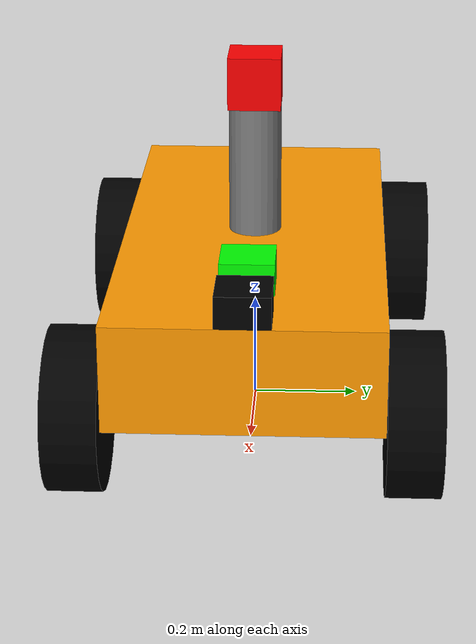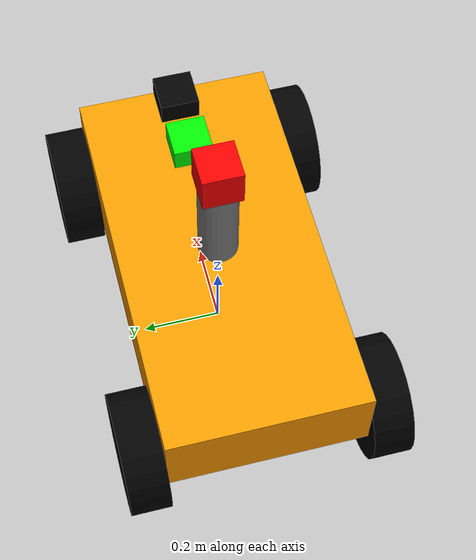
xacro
<?xml version="1.0"?>
<robot name="car4" xmlns:xacro="http://www.ros.org/wiki/xacro">

    <xacro:include filename="mobile_base.xacro" />
    <xacro:include filename="mobile_base_gazebo.xacro" />

    <xacro:include filename="lidar_laser.xacro" />
    <xacro:include filename="imu.xacro" />
    <xacro:include filename="gps.xacro" />

</robot>

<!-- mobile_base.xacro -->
<robot name="car4" xmlns:xacro="http://www.ros.org/wiki/xacro">

    <xacro:property name="base_length" value="1.0" />
    <xacro:property name="base_width" value="0.5" />
    <xacro:property name="base_height" value="0.2" />
    <xacro:property name="wheel_radius" value="0.15" />
    <xacro:property name="wheel_length" value="0.1" />
    <xacro:property name="column_radius" value="0.05" />
    <xacro:property name="column_length" value="0.3" />

    <xacro:macro name="box_inertia" params="m l w h xyz rpy">
        <inertial>
            <origin xyz="${xyz}" rpy="${rpy}" />
            <mass value="${m}" />
            <inertia ixx="${(m/12)*(h*h + l*l)}" ixy="0.0" ixz="0.0"
                     iyy="${(m/12)*(w*w + l*l)}" iyz="0.0"
                     izz="${(m/12)*(w*w + h*h)}"/>
        </inertial>
    </xacro:macro>

     <xacro:macro name="wheel_inertia" params="m r l xyz rpy">
        <inertial>
            <origin xyz="${xyz}" rpy="${rpy}" />
            <mass value="${m}" />
            <inertia ixx="${(m/12)*(3*r*r + l*l)}" ixy="0.0" ixz="0.0"
                     iyy="${(m/12)*(3*r*r + l*l)}" iyz="0.0"
                     izz="${(m/2)*(r*r)}"/>
        </inertial>
    </xacro:macro>

    <xacro:macro name="column_inertia" params="m r l xyz rpy">
        <inertial>
            <origin xyz="${xyz}" rpy="${rpy}" />
            <mass value="${m}" />
            <inertia ixx="${(m/12)*(3*r*r + l*l)}" ixy="0.0" ixz="0.0"
                     iyy="${(m/12)*(3*r*r + l*l)}" iyz="0.0"
                     izz="${(m/2)*(r*r)}"/>
        </inertial>
    </xacro:macro>

    <material name="orange">
        <color rgba="1 0.6 0 1" />
    </material>

    <material name="grey">
        <color rgba="0.5 0.5 0.5 1" />
    </material>

    <material name="black">
        <color rgba="0.0 0.0 0.0 1" />
    </material>

    <material name="red">
        <color rgba="1.0 0.0 0.0 1" />
    </material>

     <material name="green">
        <color rgba="0.0 1.0 0.0 1" />
    </material>

    <link name="base_footprint" />

    <link name="base_link">
        <visual>
            <geometry>
                <box size="${base_length} ${base_width} ${base_height}"/>
            </geometry>
            <origin xyz="0 0 0.1" rpy="0 0 0"/>
            <material name="orange" />
        </visual>
        <collision>
            <geometry>
                <box size="${base_length} ${base_width} ${base_height}"/>
            </geometry>
            <origin xyz="0 0 0.1" rpy="0 0 0"/>
        </collision>
        <xacro:box_inertia m="2.0" l="${base_length}" w="${base_width}" h="${base_height}"
                            xyz="0 0 0.1"  rpy="0 0 0" />

    </link>

    <joint name="base_joint" type="fixed">
        <origin xyz="0.0 0.0 0.15" rpy="0.0 0.0 0.0"/>
        <parent link="base_footprint"/>
        <child link="base_link"/>
    </joint>

    <link name="second_link">
        <visual>
            <geometry>
                <cylinder radius="${column_radius}" length="${column_length}"/>
            </geometry>
            <origin xyz="0 0 0.15" rpy="0 0 0" />
            <material name="grey" />
        </visual>
        <collision>
            <geometry>
                <cylinder radius="${column_radius}" length="${column_length}"/>
            </geometry>
            <origin xyz="0 0 0.15" rpy="0 0 0" />
        </collision>
        <xacro:wheel_inertia m="0.3" r="${column_radius}" l="${column_length}"
                            xyz="0 0 0.15"  rpy="0.0 0.0 0.0" />
    </link>

    <joint name="base_second_joint" type="fixed">
        <origin xyz="0.0 0.0 0.2" rpy="0.0 0.0 0.0"/>
        <parent link="base_link"/>
        <child link="second_link"/>
    </joint>

    <link name="rear_right_wheel_link">
        <visual>
            <geometry>
                <cylinder radius="${wheel_radius}" length="${wheel_length}"/>
            </geometry>
            <origin xyz="0.0 0.0 0.0" rpy="1.57 0.0 0.0"/>
            <material name="black" />
        </visual>
        <collision>
            <geometry>
                <cylinder radius="${wheel_radius}" length="${wheel_length}"/>
            </geometry>
            <origin xyz="0.0 0.0 0.0" rpy="1.57 0.0 0.0"/>
        </collision>
        <xacro:wheel_inertia m="0.3" r="${wheel_radius}" l="${wheel_length}"
                            xyz="0.0 0.0 0.0"  rpy="1.57 0.0 0.0" />
    </link>

    <joint name="base_rear_right_wheel_joint" type="continuous">
        <origin xyz="-0.4 -0.3 0.0" rpy="0.0 0.0 0.0"/>
        <parent link="base_link"/>
        <child link="rear_right_wheel_link"/>
        <axis xyz="0.0 1.0 0.0"/>
    </joint>

    <link name="rear_left_wheel_link">
        <visual>
            <geometry>
                <cylinder radius="${wheel_radius}" length="${wheel_length}"/>
            </geometry>
            <origin xyz="0.0 0.0 0.0" rpy="1.57 0.0 0.0"/>
            <material name="black" />
        </visual>
        <collision>
            <geometry>
                <cylinder radius="${wheel_radius}" length="${wheel_length}"/>
            </geometry>
            <origin xyz="0.0 0.0 0.0" rpy="1.57 0.0 0.0"/>
        </collision>
        <xacro:wheel_inertia m="0.3" r="${wheel_radius}" l="${wheel_length}"
                            xyz="0.0 0.0 0.0"  rpy="1.57 0.0 0.0" />
    </link>

    <joint name="base_rear_left_wheel_joint" type="continuous">
        <origin xyz="-0.4 0.3 0.0" rpy="0.0 0.0 0.0"/>
        <parent link="base_link"/>
        <child link="rear_left_wheel_link"/>
        <axis xyz="0.0 1.0 0.0"/>
    </joint>

    <link name="front_right_wheel_link">
        <visual>
            <geometry>
                <cylinder radius="${wheel_radius}" length="${wheel_length}"/>
            </geometry>
            <origin xyz="0.0 0.0 0.0" rpy="1.57 0.0 0.0"/>
            <material name="black" />
        </visual>
        <collision>
            <geometry>
                <cylinder radius="${wheel_radius}" length="${wheel_length}"/>
            </geometry>
            <origin xyz="0.0 0.0 0.0" rpy="1.57 0.0 0.0"/>
        </collision>
        <xacro:wheel_inertia m="0.3" r="${wheel_radius}" l="${wheel_length}"
                            xyz="0.0 0.0 0.0"  rpy="1.57 0.0 0.0" />
    </link>

    <joint name="base_front_right_wheel_joint" type="continuous">
        <origin xyz="0.4 -0.3 0.0" rpy="0.0 0.0 0.0"/>
        <parent link="base_link"/>
        <child link="front_right_wheel_link"/>
        <axis xyz="0.0 1.0 0.0"/>
    </joint>

    <link name="front_left_wheel_link">
        <visual>
            <geometry>
                <cylinder radius="${wheel_radius}" length="${wheel_length}"/>
            </geometry>
            <origin xyz="0.0 0.0 0.0" rpy="1.57 0.0 0.0"/>
            <material name="black" />
        </visual>
        <collision>
            <geometry>
                <cylinder radius="${wheel_radius}" length="${wheel_length}"/>
            </geometry>
            <origin xyz="0.0 0.0 0.0" rpy="1.57 0.0 0.0"/>
        </collision>
        <xacro:wheel_inertia m="0.3" r="${wheel_radius}" l="${wheel_length}"
                            xyz="0.0 0.0 0.0"  rpy="1.57 0.0 0.0" />
    </link>

    <joint name="base_front_left_wheel_joint" type="continuous">
        <origin xyz="0.4 0.3 0.0" rpy="0.0 0.0 0.0"/>
        <parent link="base_link"/>
        <child link="front_left_wheel_link"/>
        <axis xyz="0.0 1.0 0.0"/>
    </joint>

</robot>

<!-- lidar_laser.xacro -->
<robot name="car4" xmlns:xacro="http://www.ros.org/wiki/xacro">

    <xacro:property name="lidar_length" value="0.1" />
    <xacro:property name="lidar_width" value="0.1" />
    <xacro:property name="lidar_height" value="0.1" />

    <link name="lidar_link">
        <visual>
            <geometry>
                <box size="${lidar_length} ${lidar_width} ${lidar_height}"/>
            </geometry>
            <material name="red" />
        </visual>
        <collision>
            <geometry>
                <box size="${lidar_length} ${lidar_width} ${lidar_height}"/>
            </geometry>
        </collision>
        <xacro:box_inertia m="0.1" l="${lidar_length}" w="${lidar_width}" h="${lidar_height}"
                           xyz="0 0 0" rpy="0 0 0" />
    </link>

    <joint name="second_lidar_joint" type="fixed">
        <origin xyz="0.0 0.0 0.3" rpy="0.0 0.0 0.0"/>
        <parent link="second_link"/>
        <child link="lidar_link"/>
    </joint>

   <gazebo reference="lidar_link">
        <material>Gazebo/Red</material>

        <sensor name="laser" type="ray">
            <pose> 0 0 0 0 0 0 </pose>
            <visualize>true</visualize>
            <update_rate>60</update_rate>
            <ray>
                <scan>
                    <horizontal>
                        <samples>360</samples>
                        <resolution>0.5</resolution>
                        <min_angle>-3.14</min_angle>
                        <max_angle>3.14</max_angle>
                    </horizontal>
                </scan>
                <range>
                    <min>0.3</min>
                    <max>12</max>
                    <resolution>0.01</resolution>
                </range>
            </ray>
            <plugin name="laser_controller" filename="libgazebo_ros_ray_sensor.so">
                <ros>
                    <argument>~/out:=scan</argument>
                </ros>
                <output_type>sensor_msgs/LaserScan</output_type>
                <frame_name>lidar_link</frame_name>
            </plugin>
        </sensor>
    </gazebo>

     <gazebo reference="lidar_link">
        <material>Gazebo/Red</material>
    </gazebo>

</robot>

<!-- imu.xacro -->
<robot name="car4" xmlns:xacro="http://www.ros.org/wiki/xacro">

    <xacro:property name="imu_length" value="0.1" />
    <xacro:property name="imu_width" value="0.1" />
    <xacro:property name="imu_height" value="0.06" />

    <link name="imu_link">
        <visual>
            <geometry>
                <box size="${imu_length} ${imu_width} ${imu_height}"/>
            </geometry>
            <material name="green" />
        </visual>
        <collision>
            <geometry>
                <box size="${imu_length} ${imu_width} ${imu_height}"/>
            </geometry>
        </collision>
        <xacro:box_inertia m="0.1" l="${imu_length}" w="${imu_width}" h="${imu_height}"
                       xyz="0 0 0" rpy="0 0 0" />
    </link>

    <!-- Joint for IMU Link -->
    <joint name="imu_joint" type="fixed">
        <origin xyz="0.3 0.0 0.23" rpy="0.0 0.0 0.0"/>
        <parent link="base_link"/>
        <child link="imu_link"/>
    </joint>

    <!-- Gazebo Configuration for IMU -->
    <gazebo reference="imu_link">
        <sensor type="imu" name="imu_sensor">
            <always_on>true</always_on>
            <visualize>true</visualize>
            <update_rate>10.0</update_rate>
            <plugin name="imu_plugin" filename="libgazebo_ros_imu_sensor.so">
                <!-- Plugin Parameters -->
            </plugin>
        </sensor>
    </gazebo>

     <gazebo reference="imu_link">
        <material>Gazebo/Green</material>
    </gazebo>

</robot>

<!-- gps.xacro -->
<robot name="car4" xmlns:xacro="http://www.ros.org/wiki/xacro">

    <xacro:property name="gps_length" value="0.1" />
    <xacro:property name="gps_width" value="0.1" />
    <xacro:property name="gps_height" value="0.06" />

    <link name="gps_link">
        <visual>
            <geometry>
                <box size="${gps_length} ${gps_width} ${gps_height}"/>
            </geometry>
            <material name="black" />
        </visual>
        <collision>
            <geometry>
                <box size="${gps_length} ${gps_width} ${gps_height}"/>
            </geometry>
        </collision>
        <xacro:box_inertia m="0.1" l="${gps_length}" w="${gps_width}" h="${gps_height}"
                       xyz="0 0 0" rpy="0 0 0" />
    </link>

    <!-- Joint for GPS Link -->
    <joint name="gps_joint" type="fixed">
        <origin xyz="0.45 0.0 0.23" rpy="0.0 0.0 0.0"/>
        <parent link="base_link"/>
        <child link="gps_link"/>
    </joint>

    <!-- Gazebo Configuration for GPS -->
    <gazebo reference="gps_link">
        <sensor type="gps" name="gps_sensor">
            <always_on>true</always_on>
            <visualize>true</visualize>
            <update_rate>10.0</update_rate>
            <plugin name="gps_plugin" filename="libgazebo_ros_gps_sensor.so">
                <!-- Plugin Parameters -->
            </plugin>
        </sensor>
    </gazebo>

     <gazebo reference="gps_link">
        <material>Gazebo/Black</material>
    </gazebo>

</robot>
